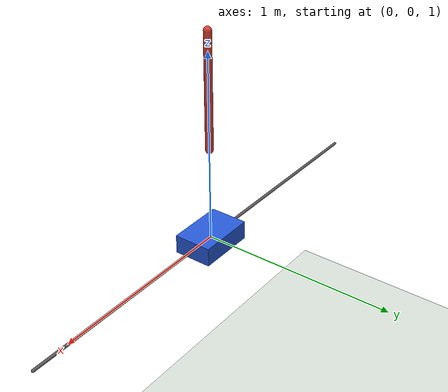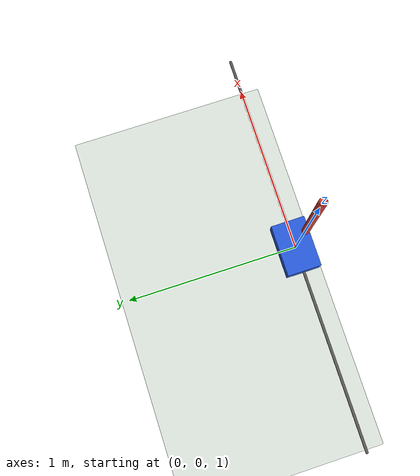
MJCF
<mujoco model="cartpole_broken">

  <option timestep="0.002" gravity="0 0 -9.81"/>

  <visual>
    <map znear="0.01" zfar="10"/>
    <global offwidth="1280" offheight="720"/>
    <!-- Nền sáng: hình render ra dùng thẳng cho slide, nền đen mặc định
         của MuJoCo chìm nghỉm trên nền trắng của slide. -->
    <rgba haze="0.9 0.93 0.96 1"/>
    <headlight ambient="0.5 0.5 0.5" diffuse="0.5 0.5 0.5"
               specular="0.1 0.1 0.1"/>
  </visual>

  <asset>
    <texture name="sky" type="skybox" builtin="gradient"
             rgb1="0.72 0.80 0.90" rgb2="0.95 0.96 0.98" width="256" height="256"/>
  </asset>

  <worldbody>
    <light pos="0 -2 3" dir="0 1 -1" directional="true" castshadow="true"/>
    <camera name="cam_side" pos="0 -3.2 1.1" quat="0.7071 0.7071 0 0"/>

    <geom name="floor" type="plane" size="3 3 0.1" rgba="0.85 0.88 0.85 1"/>
    <geom name="rail" type="capsule" fromto="-1.2 0 1.0  1.2 0 1.0" size="0.008"
          rgba="0.35 0.35 0.35 1" contype="0" conaffinity="0"/>

    <body name="cart" pos="0 0 1.0">
      <joint name="cart_slide" type="slide" axis="0 1 0"
             limited="true" range="-1 1" damping="0.05"/>

      <geom name="cart_geom" type="box" size="0.15 0.1 0.05" mass="1.0"
            rgba="0.15 0.35 0.85 1"/>

      <body name="pole" pos="0 0 0.5">
        <joint name="pole_hinge" type="hinge" axis="1 0 0" damping="0.01"/>

        <geom name="pole_geom" type="capsule" fromto="0 0 0  0 0 0.6" size="0.02"
              mass="0.1" rgba="0.85 0.25 0.2 1" contype="0" conaffinity="0"/>
      </body>
    </body>
  </worldbody>

  <actuator>
    <motor name="cart_motor" joint="cart_slide" gear="1"
           ctrllimited="true" ctrlrange="-10 10"/>
  </actuator>

  <keyframe>
    <key name="tilted" qpos="0 0.2" qvel="0 0" ctrl="0"/>
  </keyframe>

</mujoco>
